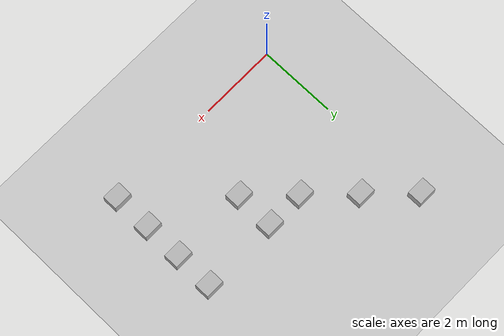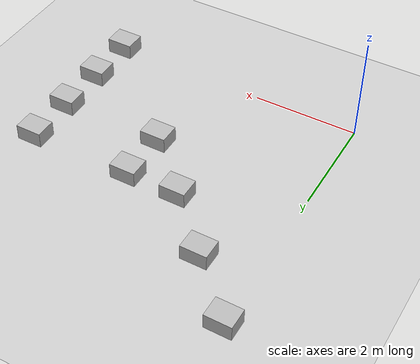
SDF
<sdf version="1.7">
 <world name="default">
  <light name="sun" type="directional">
   <pose>0 0 10 0 -0 0</pose>
   <diffuse>0.8 0.8 0.8 1</diffuse>
   <specular>0.2 0.2 0.2 1</specular>
   <attenuation>
    <range>1000</range>
    <constant>0.9</constant>
    <linear>0.01</linear>
    <quadratic>0.001</quadratic>
   </attenuation>
   <direction>-0.5 0.1 -0.9</direction>
   <spot><inner_angle>0</inner_angle><outer_angle>0</outer_angle><falloff>0</falloff></spot>
  </light>
  <model name="ground_plane">
   <static>1</static>
   <link name="link">
    <collision name="collision">
     <geometry><plane><normal>0 0 1</normal><size>100 100</size></plane></geometry>
     <surface><friction><ode><mu>100</mu><mu2>50</mu2></ode></friction></surface>
    </collision>
    <visual name="visual">
     <cast_shadows>0</cast_shadows>
     <geometry><plane><normal>0 0 1</normal><size>100 100</size></plane></geometry>
     <material>
      <script><uri>file://media/materials/scripts/gazebo.material</uri><name>Gazebo/Grey</name></script>
     </material>
    </visual>
   </link>
  </model>
  <gravity>0 0 -9.8</gravity>
  <magnetic_field>6e-06 2.3e-05 -4.2e-05</magnetic_field>
  <atmosphere type="adiabatic"/>
  <physics type="ode">
   <max_step_size>0.001</max_step_size>
   <real_time_factor>1</real_time_factor>
   <real_time_update_rate>1000</real_time_update_rate>
  </physics>
  <scene><ambient>0.4 0.4 0.4 1</ambient><background>0.7 0.7 0.7 1</background><shadows>1</shadows></scene>
  <spherical_coordinates>
   <surface_model>EARTH_WGS84</surface_model>
   <latitude_deg>0</latitude_deg>
   <longitude_deg>0</longitude_deg>
   <elevation>0</elevation>
   <heading_deg>0</heading_deg>
  </spherical_coordinates>
  <model name="cardboard_box">
   <pose>5 0 0.149 0 -0 0</pose>
   <link name="link">
    <inertial>
     <mass>2</mass>
     <inertia>
      <ixx>0.0416667</ixx>
      <ixy>0</ixy>
      <ixz>0</ixz>
      <iyy>0.0566667</iyy>
      <iyz>0</iyz>
      <izz>0.0683333</izz>
     </inertia>
    </inertial>
    <collision name="collision">
     <geometry><box><size>0.5 0.4 0.3</size></box></geometry>
     <surface>
      <friction><ode><mu>1</mu><mu2>1</mu2></ode></friction>
      <contact><ode><kp>1e+07</kp><kd>1</kd><min_depth>0.001</min_depth><max_vel>0.1</max_vel></ode></contact>
     </surface>
    </collision>
    <visual name="visual">
     <pose>0 0 -0.15 0 -0 0</pose>
     <geometry>
      <mesh><uri>model://cardboard_box/meshes/cardboard_box.dae</uri><scale>1.25932 1.00745 0.755591</scale></mesh>
     </geometry>
    </visual>
   </link>
  </model>
  <model name="cardboard_box_clone">
   <pose>5 1 0.149 0 -0 0</pose>
   <link name="link">
    <inertial>
     <mass>2</mass>
     <inertia>
      <ixx>0.0416667</ixx>
      <ixy>0</ixy>
      <ixz>0</ixz>
      <iyy>0.0566667</iyy>
      <iyz>0</iyz>
      <izz>0.0683333</izz>
     </inertia>
    </inertial>
    <collision name="collision">
     <geometry><box><size>0.5 0.4 0.3</size></box></geometry>
     <surface>
      <friction><ode><mu>1</mu><mu2>1</mu2></ode></friction>
      <contact><ode><kp>1e+07</kp><kd>1</kd><min_depth>0.001</min_depth><max_vel>0.1</max_vel></ode></contact>
     </surface>
    </collision>
    <visual name="visual">
     <pose>0 0 -0.15 0 -0 0</pose>
     <geometry>
      <mesh><uri>model://cardboard_box/meshes/cardboard_box.dae</uri><scale>1.25932 1.00745 0.755591</scale></mesh>
     </geometry>
    </visual>
   </link>
  </model>
  <model name="cardboard_box_clone_clone_0">
   <pose>5 3 0.149 0 -0 0</pose>
   <link name="link">
    <inertial>
     <mass>2</mass>
     <inertia>
      <ixx>0.0416667</ixx>
      <ixy>0</ixy>
      <ixz>0</ixz>
      <iyy>0.0566667</iyy>
      <iyz>0</iyz>
      <izz>0.0683333</izz>
     </inertia>
    </inertial>
    <collision name="collision">
     <geometry><box><size>0.5 0.4 0.3</size></box></geometry>
     <surface>
      <friction><ode><mu>1</mu><mu2>1</mu2></ode></friction>
      <contact><ode><kp>1e+07</kp><kd>1</kd><min_depth>0.001</min_depth><max_vel>0.1</max_vel></ode></contact>
     </surface>
    </collision>
    <visual name="visual">
     <pose>0 0 -0.15 0 -0 0</pose>
     <geometry>
      <mesh><uri>model://cardboard_box/meshes/cardboard_box.dae</uri><scale>1.25932 1.00745 0.755591</scale></mesh>
     </geometry>
    </visual>
   </link>
  </model>
  <model name="cardboard_box_clone_clone_0_clone">
   <pose>5 2 0.149 0 -0 0</pose>
   <link name="link">
    <inertial>
     <mass>2</mass>
     <inertia>
      <ixx>0.0416667</ixx>
      <ixy>0</ixy>
      <ixz>0</ixz>
      <iyy>0.0566667</iyy>
      <iyz>0</iyz>
      <izz>0.0683333</izz>
     </inertia>
    </inertial>
    <collision name="collision">
     <geometry><box><size>0.5 0.4 0.3</size></box></geometry>
     <surface>
      <friction><ode><mu>1</mu><mu2>1</mu2></ode></friction>
      <contact><ode><kp>1e+07</kp><kd>1</kd><min_depth>0.001</min_depth><max_vel>0.1</max_vel></ode></contact>
     </surface>
    </collision>
    <visual name="visual">
     <pose>0 0 -0.15 0 -0 0</pose>
     <geometry>
      <mesh><uri>model://cardboard_box/meshes/cardboard_box.dae</uri><scale>1.25932 1.00745 0.755591</scale></mesh>
     </geometry>
    </visual>
   </link>
  </model>
  <model name="cardboard_box_clone_clone_0_clone_0">
   <pose>0 5 0.149 0 -0 0</pose>
   <link name="link">
    <inertial>
     <mass>2</mass>
     <inertia>
      <ixx>0.0416667</ixx>
      <ixy>0</ixy>
      <ixz>0</ixz>
      <iyy>0.0566667</iyy>
      <iyz>0</iyz>
      <izz>0.0683333</izz>
     </inertia>
    </inertial>
    <collision name="collision">
     <geometry><box><size>0.5 0.4 0.3</size></box></geometry>
     <surface>
      <friction><ode><mu>1</mu><mu2>1</mu2></ode></friction>
      <contact><ode><kp>1e+07</kp><kd>1</kd><min_depth>0.001</min_depth><max_vel>0.1</max_vel></ode></contact>
     </surface>
    </collision>
    <visual name="visual">
     <pose>0 0 -0.15 0 -0 0</pose>
     <geometry>
      <mesh><uri>model://cardboard_box/meshes/cardboard_box.dae</uri><scale>1.25932 1.00745 0.755591</scale></mesh>
     </geometry>
    </visual>
   </link>
  </model>
  <model name="cardboard_box_clone_clone_0_clone_0_clone">
   <pose>1 4 0.149 0 -0 0</pose>
   <link name="link">
    <inertial>
     <mass>2</mass>
     <inertia>
      <ixx>0.0416667</ixx>
      <ixy>0</ixy>
      <ixz>0</ixz>
      <iyy>0.0566667</iyy>
      <iyz>0</iyz>
      <izz>0.0683333</izz>
     </inertia>
    </inertial>
    <collision name="collision">
     <geometry><box><size>0.5 0.4 0.3</size></box></geometry>
     <surface>
      <friction><ode><mu>1</mu><mu2>1</mu2></ode></friction>
      <contact><ode><kp>1e+07</kp><kd>1</kd><min_depth>0.001</min_depth><max_vel>0.1</max_vel></ode></contact>
     </surface>
    </collision>
    <visual name="visual">
     <pose>0 0 -0.15 0 -0 0</pose>
     <geometry>
      <mesh><uri>model://cardboard_box/meshes/cardboard_box.dae</uri><scale>1.25932 1.00745 0.755591</scale></mesh>
     </geometry>
    </visual>
   </link>
  </model>
  <model name="cardboard_box_clone_clone_0_clone_0_clone_clone">
   <pose>2 3 0.149 0 -0 0</pose>
   <link name="link">
    <inertial>
     <mass>2</mass>
     <inertia>
      <ixx>0.0416667</ixx>
      <ixy>0</ixy>
      <ixz>0</ixz>
      <iyy>0.0566667</iyy>
      <iyz>0</iyz>
      <izz>0.0683333</izz>
     </inertia>
    </inertial>
    <collision name="collision">
     <geometry><box><size>0.5 0.4 0.3</size></box></geometry>
     <surface>
      <friction><ode><mu>1</mu><mu2>1</mu2></ode></friction>
      <contact><ode><kp>1e+07</kp><kd>1</kd><min_depth>0.001</min_depth><max_vel>0.1</max_vel></ode></contact>
     </surface>
    </collision>
    <visual name="visual">
     <pose>0 0 -0.15 0 -0 0</pose>
     <geometry>
      <mesh><uri>model://cardboard_box/meshes/cardboard_box.dae</uri><scale>1.25932 1.00745 0.755591</scale></mesh>
     </geometry>
    </visual>
   </link>
  </model>
  <model name="cardboard_box_clone_clone_0_clone_0_clone_clone_clone">
   <pose>3 2 0.149 0 -0 0</pose>
   <link name="link">
    <inertial>
     <mass>2</mass>
     <inertia>
      <ixx>0.0416667</ixx>
      <ixy>0</ixy>
      <ixz>0</ixz>
      <iyy>0.0566667</iyy>
      <iyz>0</iyz>
      <izz>0.0683333</izz>
     </inertia>
    </inertial>
    <collision name="collision">
     <geometry><box><size>0.5 0.4 0.3</size></box></geometry>
     <surface>
      <friction><ode><mu>1</mu><mu2>1</mu2></ode></friction>
      <contact><ode><kp>1e+07</kp><kd>1</kd><min_depth>0.001</min_depth><max_vel>0.1</max_vel></ode></contact>
     </surface>
    </collision>
    <visual name="visual">
     <pose>0 0 -0.15 0 -0 0</pose>
     <geometry>
      <mesh><uri>model://cardboard_box/meshes/cardboard_box.dae</uri><scale>1.25932 1.00745 0.755591</scale></mesh>
     </geometry>
    </visual>
   </link>
  </model>
  <model name="cardboard_box_clone_clone_0_clone_0_clone_clone_clone_clone">
   <pose>3 3 0.149 0 -0 0</pose>
   <link name="link">
    <inertial>
     <mass>2</mass>
     <inertia>
      <ixx>0.0416667</ixx>
      <ixy>0</ixy>
      <ixz>0</ixz>
      <iyy>0.0566667</iyy>
      <iyz>0</iyz>
      <izz>0.0683333</izz>
     </inertia>
    </inertial>
    <collision name="collision">
     <geometry><box><size>0.5 0.4 0.3</size></box></geometry>
     <surface>
      <friction><ode><mu>1</mu><mu2>1</mu2></ode></friction>
      <contact><ode><kp>1e+07</kp><kd>1</kd><min_depth>0.001</min_depth><max_vel>0.1</max_vel></ode></contact>
     </surface>
    </collision>
    <visual name="visual">
     <pose>0 0 -0.15 0 -0 0</pose>
     <geometry>
      <mesh><uri>model://cardboard_box/meshes/cardboard_box.dae</uri><scale>1.25932 1.00745 0.755591</scale></mesh>
     </geometry>
    </visual>
   </link>
  </model>
 </world>
</sdf>
